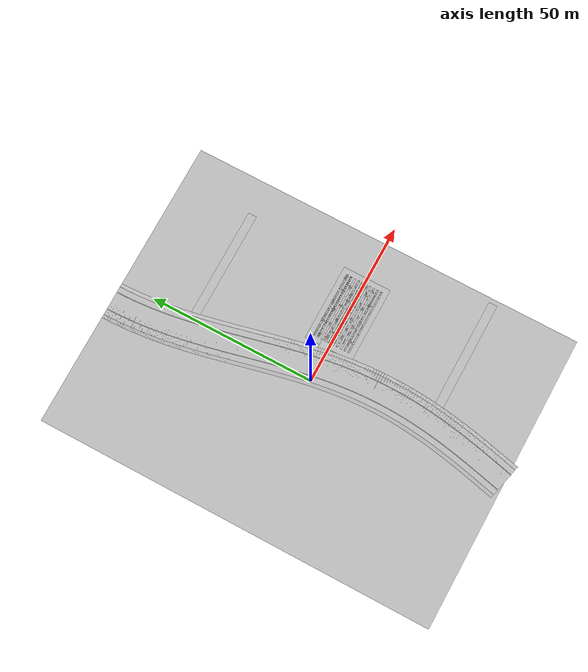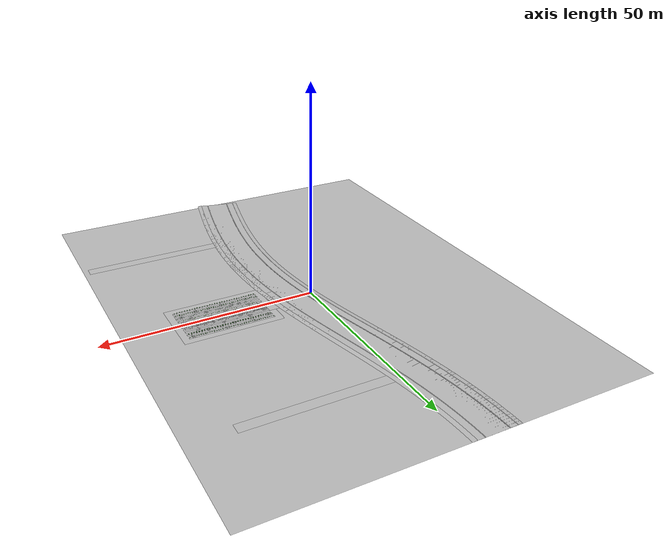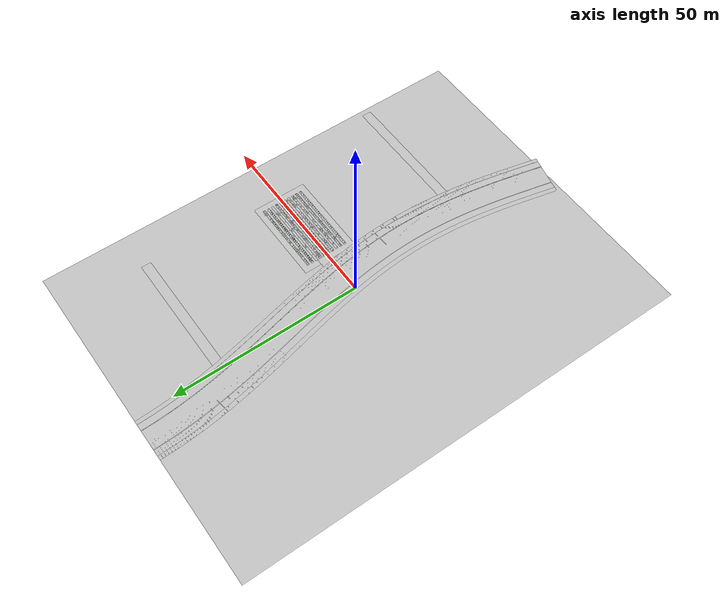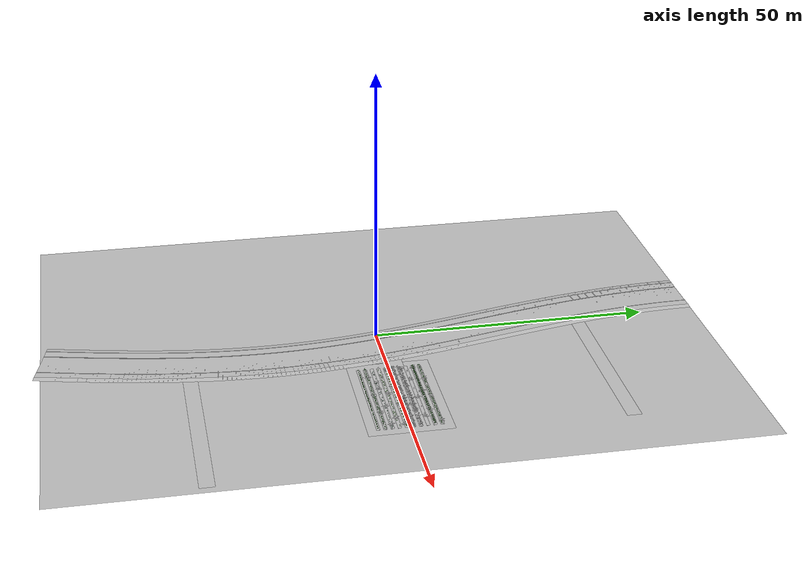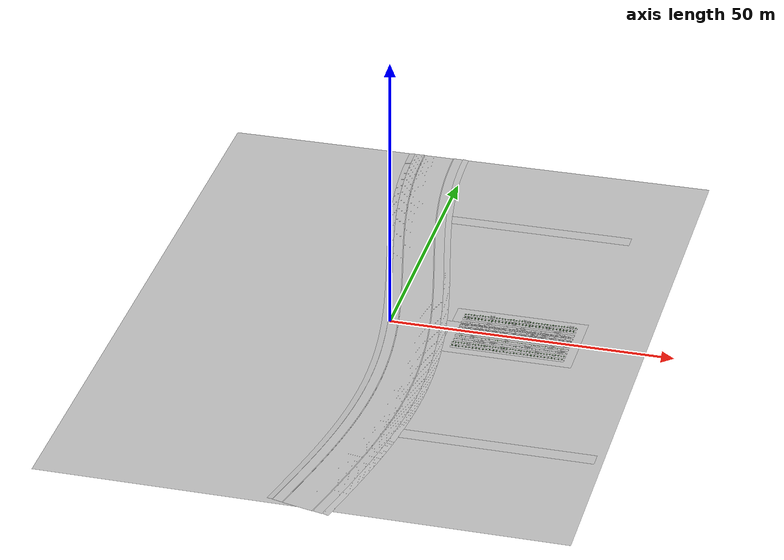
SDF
<sdf version="1.9">
 <world name="farm">
  <physics name="1ms" type="ignored">
   <max_step_size>0.001</max_step_size>
   <real_time_factor>1.0</real_time_factor>
  </physics>
  <plugin filename="gz-sim-physics-system" name="gz::sim::systems::Physics"/>
  <plugin filename="gz-sim-user-commands-system" name="gz::sim::systems::UserCommands"/>
  <plugin filename="gz-sim-scene-broadcaster-system" name="gz::sim::systems::SceneBroadcaster"/>
  <plugin filename="gz-sim-sensors-system" name="gz::sim::systems::Sensors">
   <render_engine>ogre2</render_engine>
   <background_color>0.6 0.75 0.9</background_color>
  </plugin>
  <plugin filename="gz-sim-imu-system" name="gz::sim::systems::Imu"/>
  <plugin filename="gz-sim-contact-system" name="gz::sim::systems::Contact"/>
  <spherical_coordinates>
   <surface_model>EARTH_WGS84</surface_model>
   <world_frame_orientation>ENU</world_frame_orientation>
   <latitude_deg>45.395134</latitude_deg>
   <longitude_deg>-75.572868</longitude_deg>
   <elevation>70.0</elevation>
   <heading_deg>0.0</heading_deg>
  </spherical_coordinates>
  <scene>
   <ambient>0.35 0.35 0.35 1</ambient>
   <background>0.7 0.8 0.9 1</background>
   <sky><clouds><speed>2</speed></clouds></sky>
   <grid>false</grid>
   <shadows>true</shadows>
   <fog>
    <type>linear</type>
    <color>0.78 0.84 0.90 1</color>
    <start>45</start>
    <end>140</end>
    <density>0.35</density>
   </fog>
  </scene>
  <light type="directional" name="sun">
   <intensity>1.4</intensity>
   <pose>0 0 10 0 0 0</pose>
   <diffuse>0.85 0.85 0.85 1</diffuse>
   <specular>0.3 0.3 0.3 1</specular>
   <direction>-0.5 0.1 -0.9</direction>
  </light>
  <light type="directional" name="fill">
   <cast_shadows>false</cast_shadows>
   <pose>0 0 10 0 0 0</pose>
   <diffuse>0.35 0.35 0.35 1</diffuse>
   <specular>0 0 0 1</specular>
   <direction>0.5 -0.1 -0.9</direction>
  </light>
  <model name="ground_collision">
   <static>true</static>
   <link name="link">
    <collision name="collision">
     <geometry><plane><normal>0 0 1</normal><size>90.0 120.0</size></plane></geometry>
    </collision>
   </link>
  </model>
  <model name="farm_ground">
   <static>true</static>
   <link name="link">
    <visual name="visual"><geometry><mesh><uri>model://materials/farm_ground.dae</uri></mesh></geometry></visual>
    <collision name="collision">
     <geometry><mesh><uri>model://materials/farm_ground.dae</uri></mesh></geometry>
    </collision>
   </link>
   <plugin filename="gz-sim-label-system" name="gz::sim::systems::Label"><label>14</label></plugin>
  </model>
  <model name="farm_road">
   <static>true</static>
   <link name="link">
    <visual name="visual"><geometry><mesh><uri>model://materials/farm_road.dae</uri></mesh></geometry></visual>
    <collision name="collision">
     <geometry><mesh><uri>model://materials/farm_road.dae</uri></mesh></geometry>
    </collision>
   </link>
   <plugin filename="gz-sim-label-system" name="gz::sim::systems::Label"><label>13</label></plugin>
  </model>
  <model name="farm_curb_face_left">
   <static>true</static>
   <link name="link">
    <visual name="visual">
     <geometry><mesh><uri>model://materials/farm_curb_face_left.dae</uri></mesh></geometry>
    </visual>
    <collision name="collision">
     <geometry><mesh><uri>model://materials/farm_curb_face_left.dae</uri></mesh></geometry>
    </collision>
   </link>
  </model>
  <model name="farm_curb_top_left">
   <static>true</static>
   <link name="link">
    <visual name="visual">
     <geometry><mesh><uri>model://materials/farm_curb_top_left.dae</uri></mesh></geometry>
    </visual>
    <collision name="collision">
     <geometry><mesh><uri>model://materials/farm_curb_top_left.dae</uri></mesh></geometry>
    </collision>
   </link>
  </model>
  <model name="farm_sidewalk_left">
   <static>true</static>
   <link name="link">
    <visual name="visual">
     <geometry><mesh><uri>model://materials/farm_sidewalk_left.dae</uri></mesh></geometry>
    </visual>
    <collision name="collision">
     <geometry><mesh><uri>model://materials/farm_sidewalk_left.dae</uri></mesh></geometry>
    </collision>
   </link>
   <plugin filename="gz-sim-label-system" name="gz::sim::systems::Label"><label>12</label></plugin>
  </model>
  <model name="farm_verge_left">
   <static>true</static>
   <link name="link">
    <visual name="visual">
     <geometry><mesh><uri>model://materials/farm_verge_left.dae</uri></mesh></geometry>
    </visual>
    <collision name="collision">
     <geometry><mesh><uri>model://materials/farm_verge_left.dae</uri></mesh></geometry>
    </collision>
   </link>
   <plugin filename="gz-sim-label-system" name="gz::sim::systems::Label"><label>14</label></plugin>
  </model>
  <model name="farm_curb_face_right">
   <static>true</static>
   <link name="link">
    <visual name="visual">
     <geometry><mesh><uri>model://materials/farm_curb_face_right.dae</uri></mesh></geometry>
    </visual>
    <collision name="collision">
     <geometry><mesh><uri>model://materials/farm_curb_face_right.dae</uri></mesh></geometry>
    </collision>
   </link>
  </model>
  <model name="farm_curb_top_right">
   <static>true</static>
   <link name="link">
    <visual name="visual">
     <geometry><mesh><uri>model://materials/farm_curb_top_right.dae</uri></mesh></geometry>
    </visual>
    <collision name="collision">
     <geometry><mesh><uri>model://materials/farm_curb_top_right.dae</uri></mesh></geometry>
    </collision>
   </link>
  </model>
  <model name="farm_sidewalk_right">
   <static>true</static>
   <link name="link">
    <visual name="visual">
     <geometry><mesh><uri>model://materials/farm_sidewalk_right.dae</uri></mesh></geometry>
    </visual>
    <collision name="collision">
     <geometry><mesh><uri>model://materials/farm_sidewalk_right.dae</uri></mesh></geometry>
    </collision>
   </link>
   <plugin filename="gz-sim-label-system" name="gz::sim::systems::Label"><label>12</label></plugin>
  </model>
  <model name="farm_verge_right">
   <static>true</static>
   <link name="link">
    <visual name="visual">
     <geometry><mesh><uri>model://materials/farm_verge_right.dae</uri></mesh></geometry>
    </visual>
    <collision name="collision">
     <geometry><mesh><uri>model://materials/farm_verge_right.dae</uri></mesh></geometry>
    </collision>
   </link>
   <plugin filename="gz-sim-label-system" name="gz::sim::systems::Label"><label>14</label></plugin>
  </model>
  <model name="farm_track_0">
   <static>true</static>
   <link name="link">
    <visual name="visual"><geometry><mesh><uri>model://materials/farm_track_0.dae</uri></mesh></geometry></visual>
    <collision name="collision">
     <geometry><mesh><uri>model://materials/farm_track_0.dae</uri></mesh></geometry>
    </collision>
   </link>
  </model>
  <model name="farm_track_1">
   <static>true</static>
   <link name="link">
    <visual name="visual"><geometry><mesh><uri>model://materials/farm_track_1.dae</uri></mesh></geometry></visual>
    <collision name="collision">
     <geometry><mesh><uri>model://materials/farm_track_1.dae</uri></mesh></geometry>
    </collision>
   </link>
  </model>
  <model name="farm_track_2">
   <static>true</static>
   <link name="link">
    <visual name="visual"><geometry><mesh><uri>model://materials/farm_track_2.dae</uri></mesh></geometry></visual>
    <collision name="collision">
     <geometry><mesh><uri>model://materials/farm_track_2.dae</uri></mesh></geometry>
    </collision>
   </link>
  </model>
  <model name="field_dirt">
   <static>true</static>
   <pose>22.000 0.000 0.002 0 0 0</pose>
   <link name="link">
    <visual name="visual">
     <geometry><mesh><uri>model://materials/farm_field_dirt.dae</uri></mesh></geometry>
    </visual>
   </link>
  </model>
  <model name="bed_0">
   <static>true</static>
   <pose>22.000 -5.400 0 0 0 0</pose>
   <link name="link">
    <visual name="visual"><geometry><mesh><uri>model://materials/farm_bed_a.dae</uri></mesh></geometry></visual>
    <collision name="collision">
     <geometry><mesh><uri>model://materials/farm_bed_a.dae</uri></mesh></geometry>
    </collision>
   </link>
  </model>
  <model name="bed_1">
   <static>true</static>
   <pose>22.000 -4.200 0 0 0 0</pose>
   <link name="link">
    <visual name="visual"><geometry><mesh><uri>model://materials/farm_bed_b.dae</uri></mesh></geometry></visual>
    <collision name="collision">
     <geometry><mesh><uri>model://materials/farm_bed_b.dae</uri></mesh></geometry>
    </collision>
   </link>
  </model>
  <model name="bed_2">
   <static>true</static>
   <pose>22.000 -3.000 0 0 0 0</pose>
   <link name="link">
    <visual name="visual"><geometry><mesh><uri>model://materials/farm_bed_a.dae</uri></mesh></geometry></visual>
    <collision name="collision">
     <geometry><mesh><uri>model://materials/farm_bed_a.dae</uri></mesh></geometry>
    </collision>
   </link>
  </model>
  <model name="bed_3">
   <static>true</static>
   <pose>22.000 -1.800 0 0 0 0</pose>
   <link name="link">
    <visual name="visual"><geometry><mesh><uri>model://materials/farm_bed_b.dae</uri></mesh></geometry></visual>
    <collision name="collision">
     <geometry><mesh><uri>model://materials/farm_bed_b.dae</uri></mesh></geometry>
    </collision>
   </link>
  </model>
  <model name="bed_4">
   <static>true</static>
   <pose>22.000 -0.600 0 0 0 0</pose>
   <link name="link">
    <visual name="visual"><geometry><mesh><uri>model://materials/farm_bed_a.dae</uri></mesh></geometry></visual>
    <collision name="collision">
     <geometry><mesh><uri>model://materials/farm_bed_a.dae</uri></mesh></geometry>
    </collision>
   </link>
  </model>
  <model name="bed_5">
   <static>true</static>
   <pose>22.000 0.600 0 0 0 0</pose>
   <link name="link">
    <visual name="visual"><geometry><mesh><uri>model://materials/farm_bed_b.dae</uri></mesh></geometry></visual>
    <collision name="collision">
     <geometry><mesh><uri>model://materials/farm_bed_b.dae</uri></mesh></geometry>
    </collision>
   </link>
  </model>
  <model name="bed_6">
   <static>true</static>
   <pose>22.000 1.800 0 0 0 0</pose>
   <link name="link">
    <visual name="visual"><geometry><mesh><uri>model://materials/farm_bed_a.dae</uri></mesh></geometry></visual>
    <collision name="collision">
     <geometry><mesh><uri>model://materials/farm_bed_a.dae</uri></mesh></geometry>
    </collision>
   </link>
  </model>
  <model name="bed_7">
   <static>true</static>
   <pose>22.000 3.000 0 0 0 0</pose>
   <link name="link">
    <visual name="visual"><geometry><mesh><uri>model://materials/farm_bed_b.dae</uri></mesh></geometry></visual>
    <collision name="collision">
     <geometry><mesh><uri>model://materials/farm_bed_b.dae</uri></mesh></geometry>
    </collision>
   </link>
  </model>
  <model name="bed_8">
   <static>true</static>
   <pose>22.000 4.200 0 0 0 0</pose>
   <link name="link">
    <visual name="visual"><geometry><mesh><uri>model://materials/farm_bed_a.dae</uri></mesh></geometry></visual>
    <collision name="collision">
     <geometry><mesh><uri>model://materials/farm_bed_a.dae</uri></mesh></geometry>
    </collision>
   </link>
  </model>
  <model name="bed_9">
   <static>true</static>
   <pose>22.000 5.400 0 0 0 0</pose>
   <link name="link">
    <visual name="visual"><geometry><mesh><uri>model://materials/farm_bed_b.dae</uri></mesh></geometry></visual>
    <collision name="collision">
     <geometry><mesh><uri>model://materials/farm_bed_b.dae</uri></mesh></geometry>
    </collision>
   </link>
  </model>
  <model name="pepper_plant_field">
   <static>true</static>
   <link name="link">
    <visual name="visual">
     <cast_shadows>false</cast_shadows>
     <geometry><mesh><uri>model://materials/farm_pepper_plant.dae</uri></mesh></geometry>
    </visual>
   </link>
  </model>
  <model name="potato_plant_field">
   <static>true</static>
   <link name="link">
    <visual name="visual">
     <cast_shadows>false</cast_shadows>
     <geometry><mesh><uri>model://materials/farm_potato_plant.dae</uri></mesh></geometry>
    </visual>
   </link>
  </model>
  <model name="onion_plant_field">
   <static>true</static>
   <link name="link">
    <visual name="visual">
     <cast_shadows>false</cast_shadows>
     <geometry><mesh><uri>model://materials/farm_onion_plant.dae</uri></mesh></geometry>
    </visual>
   </link>
  </model>
  <model name="carrot_plant_field">
   <static>true</static>
   <link name="link">
    <visual name="visual">
     <cast_shadows>false</cast_shadows>
     <geometry><mesh><uri>model://materials/farm_carrot_plant.dae</uri></mesh></geometry>
    </visual>
   </link>
  </model>
  <model name="pumpkin_plant_field">
   <static>true</static>
   <link name="link">
    <visual name="visual">
     <cast_shadows>false</cast_shadows>
     <geometry><mesh><uri>model://materials/farm_pumpkin_plant.dae</uri></mesh></geometry>
    </visual>
   </link>
  </model>
  <model name="maize_01_field">
   <static>true</static>
   <link name="link">
    <visual name="visual">
     <cast_shadows>false</cast_shadows>
     <geometry><mesh><uri>model://materials/farm_maize_01.dae</uri></mesh></geometry>
    </visual>
   </link>
  </model>
  <model name="maize_02_field">
   <static>true</static>
   <link name="link">
    <visual name="visual">
     <cast_shadows>false</cast_shadows>
     <geometry><mesh><uri>model://materials/farm_maize_02.dae</uri></mesh></geometry>
    </visual>
   </link>
  </model>
  <model name="nettle_field">
   <static>true</static>
   <link name="link">
    <visual name="visual">
     <cast_shadows>false</cast_shadows>
     <geometry><mesh><uri>model://materials/farm_nettle.dae</uri></mesh></geometry>
    </visual>
   </link>
  </model>
  <model name="unknown_weed_field">
   <static>true</static>
   <link name="link">
    <visual name="visual">
     <cast_shadows>false</cast_shadows>
     <geometry><mesh><uri>model://materials/farm_unknown_weed.dae</uri></mesh></geometry>
    </visual>
   </link>
  </model>
 </world>
</sdf>
